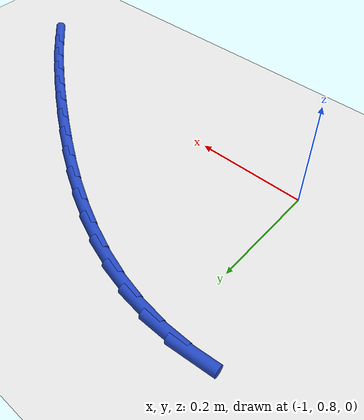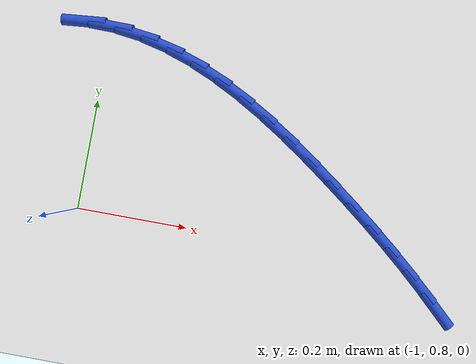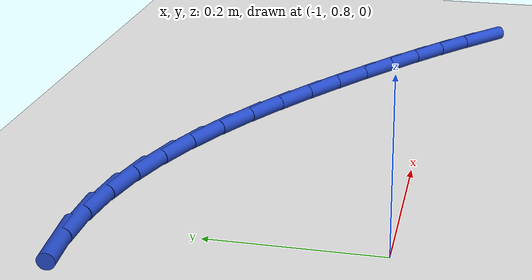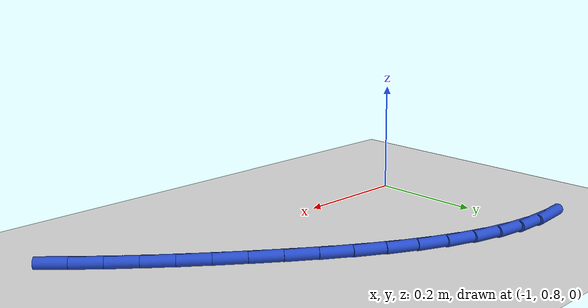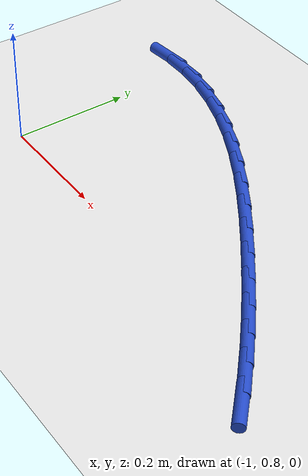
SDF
<sdf version="1.6">
 <world name="default">
  <model name="ground_plane">
   <static>1</static>
   <link name="link">
    <collision name="collision">
     <geometry><plane><normal>0 0 1</normal><size>100 100</size></plane></geometry>
     <surface><friction><ode><mu>100</mu><mu2>50</mu2></ode></friction></surface>
    </collision>
    <visual name="visual">
     <cast_shadows>0</cast_shadows>
     <geometry><plane><normal>0 0 1</normal><size>100 100</size></plane></geometry>
     <material>
      <script><uri>file://media/materials/scripts/gazebo.material</uri><name>Gazebo/WhiteGlow</name></script>
     </material>
    </visual>
   </link>
  </model>
  <model name="line">
   <link name="link_16">
    <pose>-0.3265111695497001 0.7389357648156982 0.01 0 1.57 -0.7557109829245956</pose>
    <collision name="collision">
     <geometry><cylinder><radius>0.01</radius><length>0.08</length></cylinder></geometry>
    </collision>
    <visual name="visual">
     <material>
      <script><name>Gazebo/Blue</name><uri>file://media/materials/scripts/gazebo.material</uri></script>
     </material>
     <geometry><cylinder><radius>0.01</radius><length>0.08</length></cylinder></geometry>
    </visual>
   </link>
   <link name="link_17">
    <pose>-0.364702308822153 0.774924078116306 0.01 0 1.57 -0.7257631294491292</pose>
    <collision name="collision">
     <geometry><cylinder><radius>0.01</radius><length>0.08</length></cylinder></geometry>
    </collision>
    <visual name="visual">
     <material>
      <script><name>Gazebo/Blue</name><uri>file://media/materials/scripts/gazebo.material</uri></script>
     </material>
     <geometry><cylinder><radius>0.01</radius><length>0.08</length></cylinder></geometry>
    </visual>
   </link>
   <link name="link_18">
    <pose>-0.40427613989243016 0.8100385803483536 0.01 0 1.57 -0.6993370774227474</pose>
    <collision name="collision">
     <geometry><cylinder><radius>0.01</radius><length>0.08</length></cylinder></geometry>
    </collision>
    <visual name="visual">
     <material>
      <script><name>Gazebo/Blue</name><uri>file://media/materials/scripts/gazebo.material</uri></script>
     </material>
     <geometry><cylinder><radius>0.01</radius><length>0.08</length></cylinder></geometry>
    </visual>
   </link>
   <link name="link_19">
    <pose>-0.44509936744388306 0.8443772741573604 0.01 0 1.57 -0.6763298500533612</pose>
    <collision name="collision">
     <geometry><cylinder><radius>0.01</radius><length>0.08</length></cylinder></geometry>
    </collision>
    <visual name="visual">
     <material>
      <script><name>Gazebo/Blue</name><uri>file://media/materials/scripts/gazebo.material</uri></script>
     </material>
     <geometry><cylinder><radius>0.01</radius><length>0.08</length></cylinder></geometry>
    </visual>
   </link>
   <link name="link_20">
    <pose>-0.4870386961598637 0.8780381621888458 0.01 0 1.57 -0.6566325739511303</pose>
    <collision name="collision">
     <geometry><cylinder><radius>0.01</radius><length>0.08</length></cylinder></geometry>
    </collision>
    <visual name="visual">
     <material>
      <script><name>Gazebo/Blue</name><uri>file://media/materials/scripts/gazebo.material</uri></script>
     </material>
     <geometry><cylinder><radius>0.01</radius><length>0.08</length></cylinder></geometry>
    </visual>
   </link>
   <link name="link_21">
    <pose>-0.5299608307237238 0.9111192470883286 0.01 0 1.57 -0.6397443604182963</pose>
    <collision name="collision">
     <geometry><cylinder><radius>0.01</radius><length>0.08</length></cylinder></geometry>
    </collision>
    <visual name="visual">
     <material>
      <script><name>Gazebo/Blue</name><uri>file://media/materials/scripts/gazebo.material</uri></script>
     </material>
     <geometry><cylinder><radius>0.01</radius><length>0.08</length></cylinder></geometry>
    </visual>
   </link>
   <link name="link_22">
    <pose>-0.5737359967258561 0.9436943856516036 0.01 0 1.57 -0.6198326802958957</pose>
    <collision name="collision">
     <geometry><cylinder><radius>0.01</radius><length>0.08</length></cylinder></geometry>
    </collision>
    <visual name="visual">
     <material>
      <script><name>Gazebo/Blue</name><uri>file://media/materials/scripts/gazebo.material</uri></script>
     </material>
     <geometry><cylinder><radius>0.01</radius><length>0.08</length></cylinder></geometry>
    </visual>
   </link>
   <link name="link_23">
    <pose>-0.6182854615012114 0.97548739808469 0.01 0 1.57 -0.5922998701656541</pose>
    <collision name="collision">
     <geometry><cylinder><radius>0.01</radius><length>0.08</length></cylinder></geometry>
    </collision>
    <visual name="visual">
     <material>
      <script><name>Gazebo/Blue</name><uri>file://media/materials/scripts/gazebo.material</uri></script>
     </material>
     <geometry><cylinder><radius>0.01</radius><length>0.08</length></cylinder></geometry>
    </visual>
   </link>
   <link name="link_24">
    <pose>-0.6635689614661937 1.005958289432086 0.01 0 1.57 -0.5564995965208058</pose>
    <collision name="collision">
     <geometry><cylinder><radius>0.01</radius><length>0.08</length></cylinder></geometry>
    </collision>
    <visual name="visual">
     <material>
      <script><name>Gazebo/Blue</name><uri>file://media/materials/scripts/gazebo.material</uri></script>
     </material>
     <geometry><cylinder><radius>0.01</radius><length>0.08</length></cylinder></geometry>
    </visual>
   </link>
   <link name="link_25">
    <pose>-0.7095471762068208 1.03456059662327 0.01 0 1.57 -0.5116700614922146</pose>
    <collision name="collision">
     <geometry><cylinder><radius>0.01</radius><length>0.08</length></cylinder></geometry>
    </collision>
    <visual name="visual">
     <material>
      <script><name>Gazebo/Blue</name><uri>file://media/materials/scripts/gazebo.material</uri></script>
     </material>
     <geometry><cylinder><radius>0.01</radius><length>0.08</length></cylinder></geometry>
    </visual>
   </link>
   <link name="link_26">
    <pose>-0.7561807853091099 1.0607478565877186 0.01 0 1.57 -0.45686764977049515</pose>
    <collision name="collision">
     <geometry><cylinder><radius>0.01</radius><length>0.08</length></cylinder></geometry>
    </collision>
    <visual name="visual">
     <material>
      <script><name>Gazebo/Blue</name><uri>file://media/materials/scripts/gazebo.material</uri></script>
     </material>
     <geometry><cylinder><radius>0.01</radius><length>0.08</length></cylinder></geometry>
    </visual>
   </link>
   <link name="link_27">
    <pose>-0.8034304683590784 1.0839736062549106 0.01 0 1.57 -0.39104564368123607</pose>
    <collision name="collision">
     <geometry><cylinder><radius>0.01</radius><length>0.08</length></cylinder></geometry>
    </collision>
    <visual name="visual">
     <material>
      <script><name>Gazebo/Blue</name><uri>file://media/materials/scripts/gazebo.material</uri></script>
     </material>
     <geometry><cylinder><radius>0.01</radius><length>0.08</length></cylinder></geometry>
    </visual>
   </link>
   <link name="link_28">
    <pose>-0.8512569049427436 1.1036913825543229 0.01 0 1.57 -0.3132045240413395</pose>
    <collision name="collision">
     <geometry><cylinder><radius>0.01</radius><length>0.08</length></cylinder></geometry>
    </collision>
    <visual name="visual">
     <material>
      <script><name>Gazebo/Blue</name><uri>file://media/materials/scripts/gazebo.material</uri></script>
     </material>
     <geometry><cylinder><radius>0.01</radius><length>0.08</length></cylinder></geometry>
    </visual>
   </link>
   <link name="link_29">
    <pose>-0.8996207746461229 1.1193547224154325 0.01 0 1.57 -0.22264828643290877</pose>
    <collision name="collision">
     <geometry><cylinder><radius>0.01</radius><length>0.08</length></cylinder></geometry>
    </collision>
    <visual name="visual">
     <material>
      <script><name>Gazebo/Blue</name><uri>file://media/materials/scripts/gazebo.material</uri></script>
     </material>
     <geometry><cylinder><radius>0.01</radius><length>0.08</length></cylinder></geometry>
    </visual>
   </link>
   <link name="link_30">
    <pose>-0.9484827570552334 1.1304171627677182 0.01 0 1.57 -0.1193606639497477</pose>
    <collision name="collision">
     <geometry><cylinder><radius>0.01</radius><length>0.08</length></cylinder></geometry>
    </collision>
    <visual name="visual">
     <material>
      <script><name>Gazebo/Blue</name><uri>file://media/materials/scripts/gazebo.material</uri></script>
     </material>
     <geometry><cylinder><radius>0.01</radius><length>0.08</length></cylinder></geometry>
    </visual>
   </link>
   <link name="link_31">
    <pose>-0.9978035317560927 1.136332240540657 0.01 0 1.57 -0.008226399890424153</pose>
    <collision name="collision">
     <geometry><cylinder><radius>0.01</radius><length>0.08</length></cylinder></geometry>
    </collision>
    <visual name="visual">
     <material>
      <script><name>Gazebo/Blue</name><uri>file://media/materials/scripts/gazebo.material</uri></script>
     </material>
     <geometry><cylinder><radius>0.01</radius><length>0.08</length></cylinder></geometry>
    </visual>
   </link>
   <link name="link_32">
    <pose>-1.047528681164932 1.1367413087320601 0.01 0 1.57 0.0937289869095963</pose>
    <collision name="collision">
     <geometry><cylinder><radius>0.01</radius><length>0.08</length></cylinder></geometry>
    </collision>
    <visual name="visual">
     <material>
      <script><name>Gazebo/Blue</name><uri>file://media/materials/scripts/gazebo.material</uri></script>
     </material>
     <geometry><cylinder><radius>0.01</radius><length>0.08</length></cylinder></geometry>
    </visual>
   </link>
  </model>
 </world>
</sdf>
